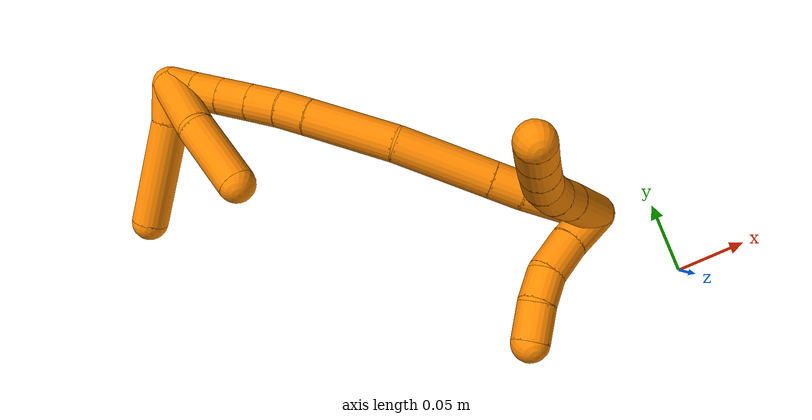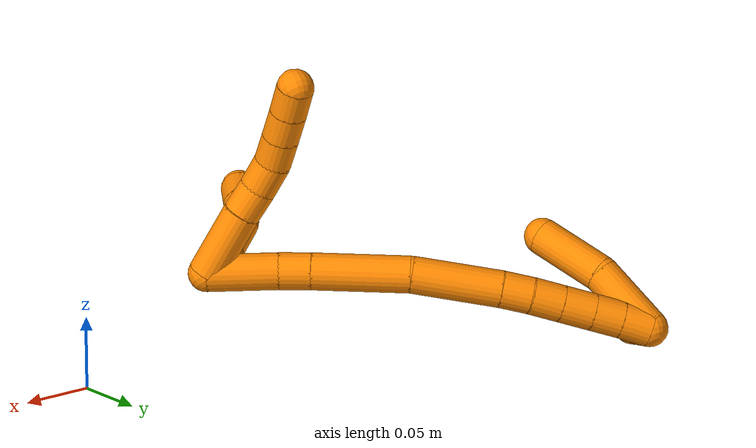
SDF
<sdf version="1.7">
 <world name="default">
  <model name="19">
   <static>0</static>
   <link name="19">
    <collision name="collision-cylinder-e_1_2_8">
     <pose>-0.006205 0.019802 0.011822 -1.03258 -0.26284 0.149784</pose>
     <geometry><cylinder><radius>0.0125</radius><length>0.047766</length></cylinder></geometry>
     <surface>
      <friction><ode><mu>1.16</mu><mu2>1.16</mu2><slip1>0</slip1><slip2>0</slip2></ode></friction>
      <contact><ode><kp>1e+06</kp><kd>1</kd><max_vel>0</max_vel><min_depth>0.001</min_depth></ode></contact>
     </surface>
    </collision>
    <visual name="visual-cylinder-e_1_2_8">
     <pose>-0.006205 0.019802 0.011822 -1.03258 -0.26284 0.149784</pose>
     <geometry><cylinder><radius>0.0125</radius><length>0.047766</length></cylinder></geometry>
     <material><ambient>0.996078 0.537255 0 1</ambient></material>
    </visual>
    <collision name="collision-cylinder-e_2_8_9">
     <pose>-0.015585 0.047987 0.028431 -1.05195 -0.317683 0.185455</pose>
     <geometry><cylinder><radius>0.0125</radius><length>0.020324</length></cylinder></geometry>
     <surface>
      <friction><ode><mu>1.16</mu><mu2>1.16</mu2><slip1>0</slip1><slip2>0</slip2></ode></friction>
      <contact><ode><kp>1e+06</kp><kd>1</kd><max_vel>0</max_vel><min_depth>0.001</min_depth></ode></contact>
     </surface>
    </collision>
    <visual name="visual-cylinder-e_2_8_9">
     <pose>-0.015585 0.047987 0.028431 -1.05195 -0.317683 0.185455</pose>
     <geometry><cylinder><radius>0.0125</radius><length>0.020324</length></cylinder></geometry>
     <material><ambient>0.996078 0.537255 0 1</ambient></material>
    </visual>
    <collision name="collision-cylinder-e_3_9_10">
     <pose>-0.020476 0.065788 0.037922 -1.10758 -0.161662 0.100096</pose>
     <geometry><cylinder><radius>0.0125</radius><length>0.021333</length></cylinder></geometry>
     <surface>
      <friction><ode><mu>1.16</mu><mu2>1.16</mu2><slip1>0</slip1><slip2>0</slip2></ode></friction>
      <contact><ode><kp>1e+06</kp><kd>1</kd><max_vel>0</max_vel><min_depth>0.001</min_depth></ode></contact>
     </surface>
    </collision>
    <visual name="visual-cylinder-e_3_9_10">
     <pose>-0.020476 0.065788 0.037922 -1.10758 -0.161662 0.100096</pose>
     <geometry><cylinder><radius>0.0125</radius><length>0.021333</length></cylinder></geometry>
     <material><ambient>0.996078 0.537255 0 1</ambient></material>
    </visual>
    <collision name="collision-cylinder-e_4_10_11">
     <pose>-0.021363 0.084 0.047553 -1.06015 0.082166 -0.048168</pose>
     <geometry><cylinder><radius>0.0125</radius><length>0.020227</length></cylinder></geometry>
     <surface>
      <friction><ode><mu>1.16</mu><mu2>1.16</mu2><slip1>0</slip1><slip2>0</slip2></ode></friction>
      <contact><ode><kp>1e+06</kp><kd>1</kd><max_vel>0</max_vel><min_depth>0.001</min_depth></ode></contact>
     </surface>
    </collision>
    <visual name="visual-cylinder-e_4_10_11">
     <pose>-0.021363 0.084 0.047553 -1.06015 0.082166 -0.048168</pose>
     <geometry><cylinder><radius>0.0125</radius><length>0.020227</length></cylinder></geometry>
     <material><ambient>0.996078 0.537255 0 1</ambient></material>
    </visual>
    <collision name="collision-cylinder-e_5_11_12">
     <pose>-0.019423 0.101639 0.057251 -1.07607 0.110042 -0.065712</pose>
     <geometry><cylinder><radius>0.0125</radius><length>0.020222</length></cylinder></geometry>
     <surface>
      <friction><ode><mu>1.16</mu><mu2>1.16</mu2><slip1>0</slip1><slip2>0</slip2></ode></friction>
      <contact><ode><kp>1e+06</kp><kd>1</kd><max_vel>0</max_vel><min_depth>0.001</min_depth></ode></contact>
     </surface>
    </collision>
    <visual name="visual-cylinder-e_5_11_12">
     <pose>-0.019423 0.101639 0.057251 -1.07607 0.110042 -0.065712</pose>
     <geometry><cylinder><radius>0.0125</radius><length>0.020222</length></cylinder></geometry>
     <material><ambient>0.996078 0.537255 0 1</ambient></material>
    </visual>
    <collision name="collision-cylinder-e_6_12_6">
     <pose>-0.017011 0.119206 0.06687 -1.06351 0.129617 -0.076321</pose>
     <geometry><cylinder><radius>0.0125</radius><length>0.020128</length></cylinder></geometry>
     <surface>
      <friction><ode><mu>1.16</mu><mu2>1.16</mu2><slip1>0</slip1><slip2>0</slip2></ode></friction>
      <contact><ode><kp>1e+06</kp><kd>1</kd><max_vel>0</max_vel><min_depth>0.001</min_depth></ode></contact>
     </surface>
    </collision>
    <visual name="visual-cylinder-e_6_12_6">
     <pose>-0.017011 0.119206 0.06687 -1.06351 0.129617 -0.076321</pose>
     <geometry><cylinder><radius>0.0125</radius><length>0.020128</length></cylinder></geometry>
     <material><ambient>0.996078 0.537255 0 1</ambient></material>
    </visual>
    <collision name="collision-cylinder-e_1_2_13">
     <pose>-0.01183 0.00072 0.00758 -0.094642 -0.998942 0.051665</pose>
     <geometry><cylinder><radius>0.0125</radius><length>0.028138</length></cylinder></geometry>
     <surface>
      <friction><ode><mu>1.16</mu><mu2>1.16</mu2><slip1>0</slip1><slip2>0</slip2></ode></friction>
      <contact><ode><kp>1e+06</kp><kd>1</kd><max_vel>0</max_vel><min_depth>0.001</min_depth></ode></contact>
     </surface>
    </collision>
    <visual name="visual-cylinder-e_1_2_13">
     <pose>-0.01183 0.00072 0.00758 -0.094642 -0.998942 0.051665</pose>
     <geometry><cylinder><radius>0.0125</radius><length>0.028138</length></cylinder></geometry>
     <material><ambient>0.996078 0.537255 0 1</ambient></material>
    </visual>
    <collision name="collision-cylinder-e_2_13_14">
     <pose>-0.034152 0.001247 0.02337 0.023389 -0.906645 -0.011395</pose>
     <geometry><cylinder><radius>0.0125</radius><length>0.026647</length></cylinder></geometry>
     <surface>
      <friction><ode><mu>1.16</mu><mu2>1.16</mu2><slip1>0</slip1><slip2>0</slip2></ode></friction>
      <contact><ode><kp>1e+06</kp><kd>1</kd><max_vel>0</max_vel><min_depth>0.001</min_depth></ode></contact>
     </surface>
    </collision>
    <visual name="visual-cylinder-e_2_13_14">
     <pose>-0.034152 0.001247 0.02337 0.023389 -0.906645 -0.011395</pose>
     <geometry><cylinder><radius>0.0125</radius><length>0.026647</length></cylinder></geometry>
     <material><ambient>0.996078 0.537255 0 1</ambient></material>
    </visual>
    <collision name="collision-cylinder-e_3_14_15">
     <pose>-0.051327 -0.001642 0.039116 0.343623 -0.695688 -0.125668</pose>
     <geometry><cylinder><radius>0.0125</radius><length>0.020855</length></cylinder></geometry>
     <surface>
      <friction><ode><mu>1.16</mu><mu2>1.16</mu2><slip1>0</slip1><slip2>0</slip2></ode></friction>
      <contact><ode><kp>1e+06</kp><kd>1</kd><max_vel>0</max_vel><min_depth>0.001</min_depth></ode></contact>
     </surface>
    </collision>
    <visual name="visual-cylinder-e_3_14_15">
     <pose>-0.051327 -0.001642 0.039116 0.343623 -0.695688 -0.125668</pose>
     <geometry><cylinder><radius>0.0125</radius><length>0.020855</length></cylinder></geometry>
     <material><ambient>0.996078 0.537255 0 1</ambient></material>
    </visual>
    <collision name="collision-cylinder-e_4_15_5">
     <pose>-0.065034 -0.010031 0.054815 0.609003 -0.614633 -0.198826</pose>
     <geometry><cylinder><radius>0.0125</radius><length>0.024361</length></cylinder></geometry>
     <surface>
      <friction><ode><mu>1.16</mu><mu2>1.16</mu2><slip1>0</slip1><slip2>0</slip2></ode></friction>
      <contact><ode><kp>1e+06</kp><kd>1</kd><max_vel>0</max_vel><min_depth>0.001</min_depth></ode></contact>
     </surface>
    </collision>
    <visual name="visual-cylinder-e_4_15_5">
     <pose>-0.065034 -0.010031 0.054815 0.609003 -0.614633 -0.198826</pose>
     <geometry><cylinder><radius>0.0125</radius><length>0.024361</length></cylinder></geometry>
     <material><ambient>0.996078 0.537255 0 1</ambient></material>
    </visual>
    <collision name="collision-cylinder-e_1_2_16">
     <pose>-0.01736 0.014454 -0.008262 -2.09009 -0.806314 1.26779</pose>
     <geometry><cylinder><radius>0.0125</radius><length>0.048106</length></cylinder></geometry>
     <surface>
      <friction><ode><mu>1.16</mu><mu2>1.16</mu2><slip1>0</slip1><slip2>0</slip2></ode></friction>
      <contact><ode><kp>1e+06</kp><kd>1</kd><max_vel>0</max_vel><min_depth>0.001</min_depth></ode></contact>
     </surface>
    </collision>
    <visual name="visual-cylinder-e_1_2_16">
     <pose>-0.01736 0.014454 -0.008262 -2.09009 -0.806314 1.26779</pose>
     <geometry><cylinder><radius>0.0125</radius><length>0.048106</length></cylinder></geometry>
     <material><ambient>0.996078 0.537255 0 1</ambient></material>
    </visual>
    <collision name="collision-cylinder-e_2_16_17">
     <pose>-0.042086 0.035697 -0.020762 -2.1288 -0.743942 1.22601</pose>
     <geometry><cylinder><radius>0.0125</radius><length>0.021754</length></cylinder></geometry>
     <surface>
      <friction><ode><mu>1.16</mu><mu2>1.16</mu2><slip1>0</slip1><slip2>0</slip2></ode></friction>
      <contact><ode><kp>1e+06</kp><kd>1</kd><max_vel>0</max_vel><min_depth>0.001</min_depth></ode></contact>
     </surface>
    </collision>
    <visual name="visual-cylinder-e_2_16_17">
     <pose>-0.042086 0.035697 -0.020762 -2.1288 -0.743942 1.22601</pose>
     <geometry><cylinder><radius>0.0125</radius><length>0.021754</length></cylinder></geometry>
     <material><ambient>0.996078 0.537255 0 1</ambient></material>
    </visual>
    <collision name="collision-cylinder-e_3_17_18">
     <pose>-0.071904 0.06257 -0.038525 -2.16348 -0.747679 1.27044</pose>
     <geometry><cylinder><radius>0.0125</radius><length>0.066042</length></cylinder></geometry>
     <surface>
      <friction><ode><mu>1.16</mu><mu2>1.16</mu2><slip1>0</slip1><slip2>0</slip2></ode></friction>
      <contact><ode><kp>1e+06</kp><kd>1</kd><max_vel>0</max_vel><min_depth>0.001</min_depth></ode></contact>
     </surface>
    </collision>
    <visual name="visual-cylinder-e_3_17_18">
     <pose>-0.071904 0.06257 -0.038525 -2.16348 -0.747679 1.27044</pose>
     <geometry><cylinder><radius>0.0125</radius><length>0.066042</length></cylinder></geometry>
     <material><ambient>0.996078 0.537255 0 1</ambient></material>
    </visual>
    <collision name="collision-cylinder-e_4_18_19">
     <pose>-0.116332 0.097189 -0.067079 -2.3729 -0.810287 1.62935</pose>
     <geometry><cylinder><radius>0.0125</radius><length>0.060665</length></cylinder></geometry>
     <surface>
      <friction><ode><mu>1.16</mu><mu2>1.16</mu2><slip1>0</slip1><slip2>0</slip2></ode></friction>
      <contact><ode><kp>1e+06</kp><kd>1</kd><max_vel>0</max_vel><min_depth>0.001</min_depth></ode></contact>
     </surface>
    </collision>
    <visual name="visual-cylinder-e_4_18_19">
     <pose>-0.116332 0.097189 -0.067079 -2.3729 -0.810287 1.62935</pose>
     <geometry><cylinder><radius>0.0125</radius><length>0.060665</length></cylinder></geometry>
     <material><ambient>0.996078 0.537255 0 1</ambient></material>
    </visual>
    <collision name="collision-cylinder-e_5_19_20">
     <pose>-0.145736 0.116148 -0.087551 -2.45904 -0.814112 1.76341</pose>
     <geometry><cylinder><radius>0.0125</radius><length>0.020433</length></cylinder></geometry>
     <surface>
      <friction><ode><mu>1.16</mu><mu2>1.16</mu2><slip1>0</slip1><slip2>0</slip2></ode></friction>
      <contact><ode><kp>1e+06</kp><kd>1</kd><max_vel>0</max_vel><min_depth>0.001</min_depth></ode></contact>
     </surface>
    </collision>
    <visual name="visual-cylinder-e_5_19_20">
     <pose>-0.145736 0.116148 -0.087551 -2.45904 -0.814112 1.76341</pose>
     <geometry><cylinder><radius>0.0125</radius><length>0.020433</length></cylinder></geometry>
     <material><ambient>0.996078 0.537255 0 1</ambient></material>
    </visual>
    <collision name="collision-cylinder-e_6_20_21">
     <pose>-0.161192 0.124311 -0.098744 -2.56514 -0.863686 1.99825</pose>
     <geometry><cylinder><radius>0.0125</radius><length>0.021117</length></cylinder></geometry>
     <surface>
      <friction><ode><mu>1.16</mu><mu2>1.16</mu2><slip1>0</slip1><slip2>0</slip2></ode></friction>
      <contact><ode><kp>1e+06</kp><kd>1</kd><max_vel>0</max_vel><min_depth>0.001</min_depth></ode></contact>
     </surface>
    </collision>
    <visual name="visual-cylinder-e_6_20_21">
     <pose>-0.161192 0.124311 -0.098744 -2.56514 -0.863686 1.99825</pose>
     <geometry><cylinder><radius>0.0125</radius><length>0.021117</length></cylinder></geometry>
     <material><ambient>0.996078 0.537255 0 1</ambient></material>
    </visual>
    <collision name="collision-cylinder-e_7_21_22">
     <pose>-0.177526 0.131871 -0.110416 -2.56846 -0.867249 2.00804</pose>
     <geometry><cylinder><radius>0.0125</radius><length>0.021788</length></cylinder></geometry>
     <surface>
      <friction><ode><mu>1.16</mu><mu2>1.16</mu2><slip1>0</slip1><slip2>0</slip2></ode></friction>
      <contact><ode><kp>1e+06</kp><kd>1</kd><max_vel>0</max_vel><min_depth>0.001</min_depth></ode></contact>
     </surface>
    </collision>
    <visual name="visual-cylinder-e_7_21_22">
     <pose>-0.177526 0.131871 -0.110416 -2.56846 -0.867249 2.00804</pose>
     <geometry><cylinder><radius>0.0125</radius><length>0.021788</length></cylinder></geometry>
     <material><ambient>0.996078 0.537255 0 1</ambient></material>
    </visual>
    <collision name="collision-cylinder-e_8_22_23">
     <pose>-0.193489 0.139211 -0.121793 -2.5688 -0.867492 2.0089</pose>
     <geometry><cylinder><radius>0.0125</radius><length>0.020075</length></cylinder></geometry>
     <surface>
      <friction><ode><mu>1.16</mu><mu2>1.16</mu2><slip1>0</slip1><slip2>0</slip2></ode></friction>
      <contact><ode><kp>1e+06</kp><kd>1</kd><max_vel>0</max_vel><min_depth>0.001</min_depth></ode></contact>
     </surface>
    </collision>
    <visual name="visual-cylinder-e_8_22_23">
     <pose>-0.193489 0.139211 -0.121793 -2.5688 -0.867492 2.0089</pose>
     <geometry><cylinder><radius>0.0125</radius><length>0.020075</length></cylinder></geometry>
     <material><ambient>0.996078 0.537255 0 1</ambient></material>
    </visual>
    <collision name="collision-cylinder-e_9_23_1">
     <pose>-0.208605 0.146175 -0.132964 -2.59906 -0.841003 2.02879</pose>
     <geometry><cylinder><radius>0.0125</radius><length>0.02002</length></cylinder></geometry>
     <surface>
      <friction><ode><mu>1.16</mu><mu2>1.16</mu2><slip1>0</slip1><slip2>0</slip2></ode></friction>
      <contact><ode><kp>1e+06</kp><kd>1</kd><max_vel>0</max_vel><min_depth>0.001</min_depth></ode></contact>
     </surface>
    </collision>
    <visual name="visual-cylinder-e_9_23_1">
     <pose>-0.208605 0.146175 -0.132964 -2.59906 -0.841003 2.02879</pose>
     <geometry><cylinder><radius>0.0125</radius><length>0.02002</length></cylinder></geometry>
     <material><ambient>0.996078 0.537255 0 1</ambient></material>
    </visual>
    <collision name="collision-cylinder-e_1_1_24">
     <pose>-0.211093 0.143435 -0.115033 0.255872 0.200696 0.025903</pose>
     <geometry><cylinder><radius>0.0125</radius><length>0.049886</length></cylinder></geometry>
     <surface>
      <friction><ode><mu>1.16</mu><mu2>1.16</mu2><slip1>0</slip1><slip2>0</slip2></ode></friction>
      <contact><ode><kp>1e+06</kp><kd>1</kd><max_vel>0</max_vel><min_depth>0.001</min_depth></ode></contact>
     </surface>
    </collision>
    <visual name="visual-cylinder-e_1_1_24">
     <pose>-0.211093 0.143435 -0.115033 0.255872 0.200696 0.025903</pose>
     <geometry><cylinder><radius>0.0125</radius><length>0.049886</length></cylinder></geometry>
     <material><ambient>0.996078 0.537255 0 1</ambient></material>
    </visual>
    <collision name="collision-cylinder-e_2_24_4">
     <pose>-0.200321 0.124655 -0.070515 0.542887 0.23358 0.065282</pose>
     <geometry><cylinder><radius>0.0125</radius><length>0.050114</length></cylinder></geometry>
     <surface>
      <friction><ode><mu>1.16</mu><mu2>1.16</mu2><slip1>0</slip1><slip2>0</slip2></ode></friction>
      <contact><ode><kp>1e+06</kp><kd>1</kd><max_vel>0</max_vel><min_depth>0.001</min_depth></ode></contact>
     </surface>
    </collision>
    <visual name="visual-cylinder-e_2_24_4">
     <pose>-0.200321 0.124655 -0.070515 0.542887 0.23358 0.065282</pose>
     <geometry><cylinder><radius>0.0125</radius><length>0.050114</length></cylinder></geometry>
     <material><ambient>0.996078 0.537255 0 1</ambient></material>
    </visual>
    <collision name="collision-cylinder-e_1_1_25">
     <pose>-0.222621 0.139792 -0.134247 1.1471 -0.546325 -0.358092</pose>
     <geometry><cylinder><radius>0.0125</radius><length>0.025237</length></cylinder></geometry>
     <surface>
      <friction><ode><mu>1.16</mu><mu2>1.16</mu2><slip1>0</slip1><slip2>0</slip2></ode></friction>
      <contact><ode><kp>1e+06</kp><kd>1</kd><max_vel>0</max_vel><min_depth>0.001</min_depth></ode></contact>
     </surface>
    </collision>
    <visual name="visual-cylinder-e_1_1_25">
     <pose>-0.222621 0.139792 -0.134247 1.1471 -0.546325 -0.358092</pose>
     <geometry><cylinder><radius>0.0125</radius><length>0.025237</length></cylinder></geometry>
     <material><ambient>0.996078 0.537255 0 1</ambient></material>
    </visual>
    <collision name="collision-cylinder-e_2_25_3">
     <pose>-0.254054 0.103711 -0.120364 1.22527 -0.728134 -0.523364</pose>
     <geometry><cylinder><radius>0.0125</radius><length>0.074763</length></cylinder></geometry>
     <surface>
      <friction><ode><mu>1.16</mu><mu2>1.16</mu2><slip1>0</slip1><slip2>0</slip2></ode></friction>
      <contact><ode><kp>1e+06</kp><kd>1</kd><max_vel>0</max_vel><min_depth>0.001</min_depth></ode></contact>
     </surface>
    </collision>
    <visual name="visual-cylinder-e_2_25_3">
     <pose>-0.254054 0.103711 -0.120364 1.22527 -0.728134 -0.523364</pose>
     <geometry><cylinder><radius>0.0125</radius><length>0.074763</length></cylinder></geometry>
     <material><ambient>0.996078 0.537255 0 1</ambient></material>
    </visual>
    <collision name="collision-sphere-3">
     <pose>-0.27893 0.077458 -0.110914 0 -0 0</pose>
     <geometry><sphere><radius>0.0125</radius></sphere></geometry>
     <surface>
      <friction><ode><mu>1.16</mu><mu2>1.16</mu2><slip1>0</slip1><slip2>0</slip2></ode></friction>
      <contact><ode><kp>1e+06</kp><kd>1</kd><max_vel>0</max_vel><min_depth>0.001</min_depth></ode></contact>
     </surface>
    </collision>
    <visual name="visual-sphere-3">
     <pose>-0.27893 0.077458 -0.110914 0 -0 0</pose>
     <geometry><sphere><radius>0.0125</radius></sphere></geometry>
     <material><ambient>0.996078 0.537255 0 1</ambient></material>
    </visual>
    <collision name="collision-sphere-25">
     <pose>-0.229177 0.129964 -0.129814 0 -0 0</pose>
     <geometry><sphere><radius>0.0125</radius></sphere></geometry>
     <surface>
      <friction><ode><mu>1.16</mu><mu2>1.16</mu2><slip1>0</slip1><slip2>0</slip2></ode></friction>
      <contact><ode><kp>1e+06</kp><kd>1</kd><max_vel>0</max_vel><min_depth>0.001</min_depth></ode></contact>
     </surface>
    </collision>
    <visual name="visual-sphere-25">
     <pose>-0.229177 0.129964 -0.129814 0 -0 0</pose>
     <geometry><sphere><radius>0.0125</radius></sphere></geometry>
     <material><ambient>0.996078 0.537255 0 1</ambient></material>
    </visual>
    <collision name="collision-sphere-4">
     <pose>-0.194521 0.112062 -0.049643 0 -0 0</pose>
     <geometry><sphere><radius>0.0125</radius></sphere></geometry>
     <surface>
      <friction><ode><mu>1.16</mu><mu2>1.16</mu2><slip1>0</slip1><slip2>0</slip2></ode></friction>
      <contact><ode><kp>1e+06</kp><kd>1</kd><max_vel>0</max_vel><min_depth>0.001</min_depth></ode></contact>
     </surface>
    </collision>
    <visual name="visual-sphere-4">
     <pose>-0.194521 0.112062 -0.049643 0 -0 0</pose>
     <geometry><sphere><radius>0.0125</radius></sphere></geometry>
     <material><ambient>0.996078 0.537255 0 1</ambient></material>
    </visual>
    <collision name="collision-sphere-24">
     <pose>-0.206121 0.137249 -0.091387 0 -0 0</pose>
     <geometry><sphere><radius>0.0125</radius></sphere></geometry>
     <surface>
      <friction><ode><mu>1.16</mu><mu2>1.16</mu2><slip1>0</slip1><slip2>0</slip2></ode></friction>
      <contact><ode><kp>1e+06</kp><kd>1</kd><max_vel>0</max_vel><min_depth>0.001</min_depth></ode></contact>
     </surface>
    </collision>
    <visual name="visual-sphere-24">
     <pose>-0.206121 0.137249 -0.091387 0 -0 0</pose>
     <geometry><sphere><radius>0.0125</radius></sphere></geometry>
     <material><ambient>0.996078 0.537255 0 1</ambient></material>
    </visual>
    <collision name="collision-sphere-1">
     <pose>-0.216065 0.149621 -0.13868 0 -0 0</pose>
     <geometry><sphere><radius>0.0125</radius></sphere></geometry>
     <surface>
      <friction><ode><mu>1.16</mu><mu2>1.16</mu2><slip1>0</slip1><slip2>0</slip2></ode></friction>
      <contact><ode><kp>1e+06</kp><kd>1</kd><max_vel>0</max_vel><min_depth>0.001</min_depth></ode></contact>
     </surface>
    </collision>
    <visual name="visual-sphere-1">
     <pose>-0.216065 0.149621 -0.13868 0 -0 0</pose>
     <geometry><sphere><radius>0.0125</radius></sphere></geometry>
     <material><ambient>0.996078 0.537255 0 1</ambient></material>
    </visual>
    <collision name="collision-sphere-23">
     <pose>-0.201144 0.142729 -0.127249 0 -0 0</pose>
     <geometry><sphere><radius>0.0125</radius></sphere></geometry>
     <surface>
      <friction><ode><mu>1.16</mu><mu2>1.16</mu2><slip1>0</slip1><slip2>0</slip2></ode></friction>
      <contact><ode><kp>1e+06</kp><kd>1</kd><max_vel>0</max_vel><min_depth>0.001</min_depth></ode></contact>
     </surface>
    </collision>
    <visual name="visual-sphere-23">
     <pose>-0.201144 0.142729 -0.127249 0 -0 0</pose>
     <geometry><sphere><radius>0.0125</radius></sphere></geometry>
     <material><ambient>0.996078 0.537255 0 1</ambient></material>
    </visual>
    <collision name="collision-sphere-22">
     <pose>-0.185833 0.135693 -0.116338 0 -0 0</pose>
     <geometry><sphere><radius>0.0125</radius></sphere></geometry>
     <surface>
      <friction><ode><mu>1.16</mu><mu2>1.16</mu2><slip1>0</slip1><slip2>0</slip2></ode></friction>
      <contact><ode><kp>1e+06</kp><kd>1</kd><max_vel>0</max_vel><min_depth>0.001</min_depth></ode></contact>
     </surface>
    </collision>
    <visual name="visual-sphere-22">
     <pose>-0.185833 0.135693 -0.116338 0 -0 0</pose>
     <geometry><sphere><radius>0.0125</radius></sphere></geometry>
     <material><ambient>0.996078 0.537255 0 1</ambient></material>
    </visual>
    <collision name="collision-sphere-21">
     <pose>-0.169219 0.128049 -0.104495 0 -0 0</pose>
     <geometry><sphere><radius>0.0125</radius></sphere></geometry>
     <surface>
      <friction><ode><mu>1.16</mu><mu2>1.16</mu2><slip1>0</slip1><slip2>0</slip2></ode></friction>
      <contact><ode><kp>1e+06</kp><kd>1</kd><max_vel>0</max_vel><min_depth>0.001</min_depth></ode></contact>
     </surface>
    </collision>
    <visual name="visual-sphere-21">
     <pose>-0.169219 0.128049 -0.104495 0 -0 0</pose>
     <geometry><sphere><radius>0.0125</radius></sphere></geometry>
     <material><ambient>0.996078 0.537255 0 1</ambient></material>
    </visual>
    <collision name="collision-sphere-12">
     <pose>-0.018312 0.110483 0.062022 0 -0 0</pose>
     <geometry><sphere><radius>0.0125</radius></sphere></geometry>
     <surface>
      <friction><ode><mu>1.16</mu><mu2>1.16</mu2><slip1>0</slip1><slip2>0</slip2></ode></friction>
      <contact><ode><kp>1e+06</kp><kd>1</kd><max_vel>0</max_vel><min_depth>0.001</min_depth></ode></contact>
     </surface>
    </collision>
    <visual name="visual-sphere-12">
     <pose>-0.018312 0.110483 0.062022 0 -0 0</pose>
     <geometry><sphere><radius>0.0125</radius></sphere></geometry>
     <material><ambient>0.996078 0.537255 0 1</ambient></material>
    </visual>
    <collision name="collision-sphere-11">
     <pose>-0.020533 0.092794 0.052479 0 -0 0</pose>
     <geometry><sphere><radius>0.0125</radius></sphere></geometry>
     <surface>
      <friction><ode><mu>1.16</mu><mu2>1.16</mu2><slip1>0</slip1><slip2>0</slip2></ode></friction>
      <contact><ode><kp>1e+06</kp><kd>1</kd><max_vel>0</max_vel><min_depth>0.001</min_depth></ode></contact>
     </surface>
    </collision>
    <visual name="visual-sphere-11">
     <pose>-0.020533 0.092794 0.052479 0 -0 0</pose>
     <geometry><sphere><radius>0.0125</radius></sphere></geometry>
     <material><ambient>0.996078 0.537255 0 1</ambient></material>
    </visual>
    <collision name="collision-sphere-10">
     <pose>-0.022193 0.075207 0.042626 0 -0 0</pose>
     <geometry><sphere><radius>0.0125</radius></sphere></geometry>
     <surface>
      <friction><ode><mu>1.16</mu><mu2>1.16</mu2><slip1>0</slip1><slip2>0</slip2></ode></friction>
      <contact><ode><kp>1e+06</kp><kd>1</kd><max_vel>0</max_vel><min_depth>0.001</min_depth></ode></contact>
     </surface>
    </collision>
    <visual name="visual-sphere-10">
     <pose>-0.022193 0.075207 0.042626 0 -0 0</pose>
     <geometry><sphere><radius>0.0125</radius></sphere></geometry>
     <material><ambient>0.996078 0.537255 0 1</ambient></material>
    </visual>
    <collision name="collision-sphere-9">
     <pose>-0.018759 0.05637 0.033218 0 -0 0</pose>
     <geometry><sphere><radius>0.0125</radius></sphere></geometry>
     <surface>
      <friction><ode><mu>1.16</mu><mu2>1.16</mu2><slip1>0</slip1><slip2>0</slip2></ode></friction>
      <contact><ode><kp>1e+06</kp><kd>1</kd><max_vel>0</max_vel><min_depth>0.001</min_depth></ode></contact>
     </surface>
    </collision>
    <visual name="visual-sphere-9">
     <pose>-0.018759 0.05637 0.033218 0 -0 0</pose>
     <geometry><sphere><radius>0.0125</radius></sphere></geometry>
     <material><ambient>0.996078 0.537255 0 1</ambient></material>
    </visual>
    <collision name="collision-sphere-2">
     <geometry><sphere><radius>0.0125</radius></sphere></geometry>
     <surface>
      <friction><ode><mu>1.16</mu><mu2>1.16</mu2><slip1>0</slip1><slip2>0</slip2></ode></friction>
      <contact><ode><kp>1e+06</kp><kd>1</kd><max_vel>0</max_vel><min_depth>0.001</min_depth></ode></contact>
     </surface>
    </collision>
    <visual name="visual-sphere-2">
     <geometry><sphere><radius>0.0125</radius></sphere></geometry>
     <material><ambient>0.996078 0.537255 0 1</ambient></material>
    </visual>
    <collision name="collision-sphere-19">
     <pose>-0.138307 0.111724 -0.082108 0 -0 0</pose>
     <geometry><sphere><radius>0.0125</radius></sphere></geometry>
     <surface>
      <friction><ode><mu>1.16</mu><mu2>1.16</mu2><slip1>0</slip1><slip2>0</slip2></ode></friction>
      <contact><ode><kp>1e+06</kp><kd>1</kd><max_vel>0</max_vel><min_depth>0.001</min_depth></ode></contact>
     </surface>
    </collision>
    <visual name="visual-sphere-19">
     <pose>-0.138307 0.111724 -0.082108 0 -0 0</pose>
     <geometry><sphere><radius>0.0125</radius></sphere></geometry>
     <material><ambient>0.996078 0.537255 0 1</ambient></material>
    </visual>
    <collision name="collision-sphere-8">
     <pose>-0.012411 0.039604 0.023644 0 -0 0</pose>
     <geometry><sphere><radius>0.0125</radius></sphere></geometry>
     <surface>
      <friction><ode><mu>1.16</mu><mu2>1.16</mu2><slip1>0</slip1><slip2>0</slip2></ode></friction>
      <contact><ode><kp>1e+06</kp><kd>1</kd><max_vel>0</max_vel><min_depth>0.001</min_depth></ode></contact>
     </surface>
    </collision>
    <visual name="visual-sphere-8">
     <pose>-0.012411 0.039604 0.023644 0 -0 0</pose>
     <geometry><sphere><radius>0.0125</radius></sphere></geometry>
     <material><ambient>0.996078 0.537255 0 1</ambient></material>
    </visual>
    <collision name="collision-sphere-6">
     <pose>-0.015711 0.127929 0.071718 0 -0 0</pose>
     <geometry><sphere><radius>0.0125</radius></sphere></geometry>
     <surface>
      <friction><ode><mu>1.16</mu><mu2>1.16</mu2><slip1>0</slip1><slip2>0</slip2></ode></friction>
      <contact><ode><kp>1e+06</kp><kd>1</kd><max_vel>0</max_vel><min_depth>0.001</min_depth></ode></contact>
     </surface>
    </collision>
    <visual name="visual-sphere-6">
     <pose>-0.015711 0.127929 0.071718 0 -0 0</pose>
     <geometry><sphere><radius>0.0125</radius></sphere></geometry>
     <material><ambient>0.996078 0.537255 0 1</ambient></material>
    </visual>
    <collision name="collision-sphere-13">
     <pose>-0.023661 0.001439 0.01516 0 -0 0</pose>
     <geometry><sphere><radius>0.0125</radius></sphere></geometry>
     <surface>
      <friction><ode><mu>1.16</mu><mu2>1.16</mu2><slip1>0</slip1><slip2>0</slip2></ode></friction>
      <contact><ode><kp>1e+06</kp><kd>1</kd><max_vel>0</max_vel><min_depth>0.001</min_depth></ode></contact>
     </surface>
    </collision>
    <visual name="visual-sphere-13">
     <pose>-0.023661 0.001439 0.01516 0 -0 0</pose>
     <geometry><sphere><radius>0.0125</radius></sphere></geometry>
     <material><ambient>0.996078 0.537255 0 1</ambient></material>
    </visual>
    <collision name="collision-sphere-14">
     <pose>-0.044644 0.001055 0.03158 0 -0 0</pose>
     <geometry><sphere><radius>0.0125</radius></sphere></geometry>
     <surface>
      <friction><ode><mu>1.16</mu><mu2>1.16</mu2><slip1>0</slip1><slip2>0</slip2></ode></friction>
      <contact><ode><kp>1e+06</kp><kd>1</kd><max_vel>0</max_vel><min_depth>0.001</min_depth></ode></contact>
     </surface>
    </collision>
    <visual name="visual-sphere-14">
     <pose>-0.044644 0.001055 0.03158 0 -0 0</pose>
     <geometry><sphere><radius>0.0125</radius></sphere></geometry>
     <material><ambient>0.996078 0.537255 0 1</ambient></material>
    </visual>
    <collision name="collision-sphere-15">
     <pose>-0.05801 -0.004338 0.046653 0 -0 0</pose>
     <geometry><sphere><radius>0.0125</radius></sphere></geometry>
     <surface>
      <friction><ode><mu>1.16</mu><mu2>1.16</mu2><slip1>0</slip1><slip2>0</slip2></ode></friction>
      <contact><ode><kp>1e+06</kp><kd>1</kd><max_vel>0</max_vel><min_depth>0.001</min_depth></ode></contact>
     </surface>
    </collision>
    <visual name="visual-sphere-15">
     <pose>-0.05801 -0.004338 0.046653 0 -0 0</pose>
     <geometry><sphere><radius>0.0125</radius></sphere></geometry>
     <material><ambient>0.996078 0.537255 0 1</ambient></material>
    </visual>
    <collision name="collision-sphere-5">
     <pose>-0.072058 -0.015723 0.062977 0 -0 0</pose>
     <geometry><sphere><radius>0.0125</radius></sphere></geometry>
     <surface>
      <friction><ode><mu>1.16</mu><mu2>1.16</mu2><slip1>0</slip1><slip2>0</slip2></ode></friction>
      <contact><ode><kp>1e+06</kp><kd>1</kd><max_vel>0</max_vel><min_depth>0.001</min_depth></ode></contact>
     </surface>
    </collision>
    <visual name="visual-sphere-5">
     <pose>-0.072058 -0.015723 0.062977 0 -0 0</pose>
     <geometry><sphere><radius>0.0125</radius></sphere></geometry>
     <material><ambient>0.996078 0.537255 0 1</ambient></material>
    </visual>
    <collision name="collision-sphere-16">
     <pose>-0.03472 0.028908 -0.016524 0 -0 0</pose>
     <geometry><sphere><radius>0.0125</radius></sphere></geometry>
     <surface>
      <friction><ode><mu>1.16</mu><mu2>1.16</mu2><slip1>0</slip1><slip2>0</slip2></ode></friction>
      <contact><ode><kp>1e+06</kp><kd>1</kd><max_vel>0</max_vel><min_depth>0.001</min_depth></ode></contact>
     </surface>
    </collision>
    <visual name="visual-sphere-16">
     <pose>-0.03472 0.028908 -0.016524 0 -0 0</pose>
     <geometry><sphere><radius>0.0125</radius></sphere></geometry>
     <material><ambient>0.996078 0.537255 0 1</ambient></material>
    </visual>
    <collision name="collision-sphere-17">
     <pose>-0.049452 0.042487 -0.025 0 -0 0</pose>
     <geometry><sphere><radius>0.0125</radius></sphere></geometry>
     <surface>
      <friction><ode><mu>1.16</mu><mu2>1.16</mu2><slip1>0</slip1><slip2>0</slip2></ode></friction>
      <contact><ode><kp>1e+06</kp><kd>1</kd><max_vel>0</max_vel><min_depth>0.001</min_depth></ode></contact>
     </surface>
    </collision>
    <visual name="visual-sphere-17">
     <pose>-0.049452 0.042487 -0.025 0 -0 0</pose>
     <geometry><sphere><radius>0.0125</radius></sphere></geometry>
     <material><ambient>0.996078 0.537255 0 1</ambient></material>
    </visual>
    <collision name="collision-sphere-18">
     <pose>-0.094356 0.082653 -0.05205 0 -0 0</pose>
     <geometry><sphere><radius>0.0125</radius></sphere></geometry>
     <surface>
      <friction><ode><mu>1.16</mu><mu2>1.16</mu2><slip1>0</slip1><slip2>0</slip2></ode></friction>
      <contact><ode><kp>1e+06</kp><kd>1</kd><max_vel>0</max_vel><min_depth>0.001</min_depth></ode></contact>
     </surface>
    </collision>
    <visual name="visual-sphere-18">
     <pose>-0.094356 0.082653 -0.05205 0 -0 0</pose>
     <geometry><sphere><radius>0.0125</radius></sphere></geometry>
     <material><ambient>0.996078 0.537255 0 1</ambient></material>
    </visual>
    <collision name="collision-sphere-20">
     <pose>-0.153165 0.120572 -0.092993 0 -0 0</pose>
     <geometry><sphere><radius>0.0125</radius></sphere></geometry>
     <surface>
      <friction><ode><mu>1.16</mu><mu2>1.16</mu2><slip1>0</slip1><slip2>0</slip2></ode></friction>
      <contact><ode><kp>1e+06</kp><kd>1</kd><max_vel>0</max_vel><min_depth>0.001</min_depth></ode></contact>
     </surface>
    </collision>
    <visual name="visual-sphere-20">
     <pose>-0.153165 0.120572 -0.092993 0 -0 0</pose>
     <geometry><sphere><radius>0.0125</radius></sphere></geometry>
     <material><ambient>0.996078 0.537255 0 1</ambient></material>
    </visual>
    <inertial>
     <pose>-0.110884 0.078707 -0.042806 0 -0 0</pose>
     <mass>0.75</mass>
     <inertia><ixx>8.7e-05</ixx><ixy>0</ixy><ixz>0</ixz><iyy>0.000144</iyy><iyz>0</iyz><izz>7.4e-05</izz></inertia>
    </inertial>
   </link>
   <pose>-0.050743 0.066274 0.086431 0.661864 -0.094559 0.062142</pose>
  </model>
 </world>
</sdf>
